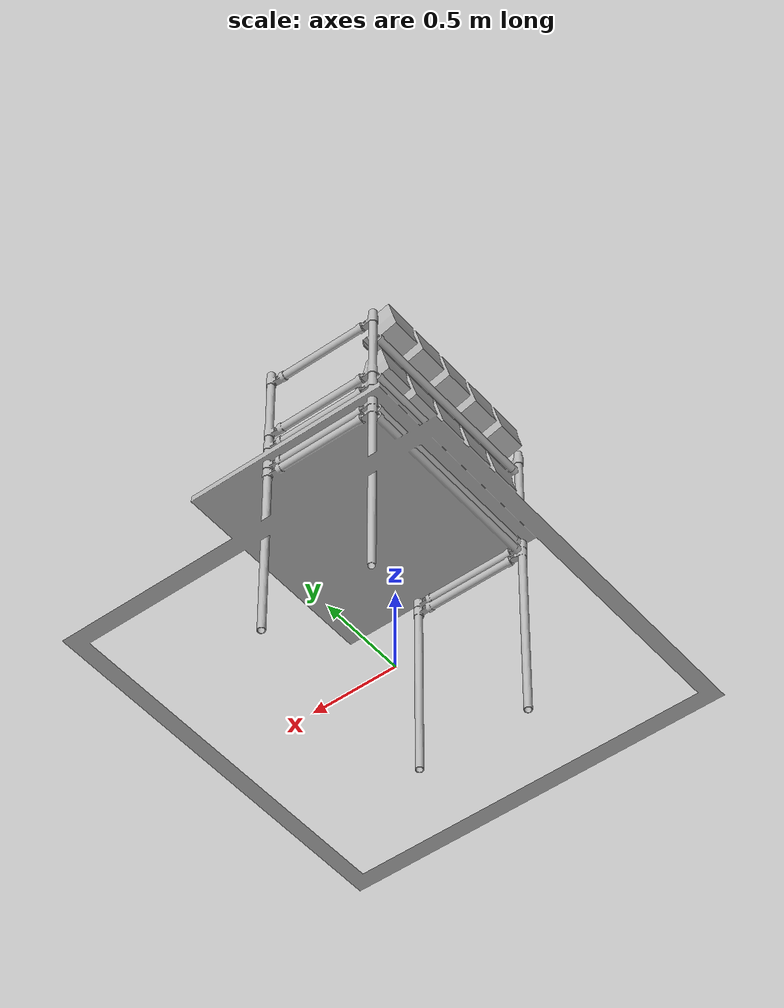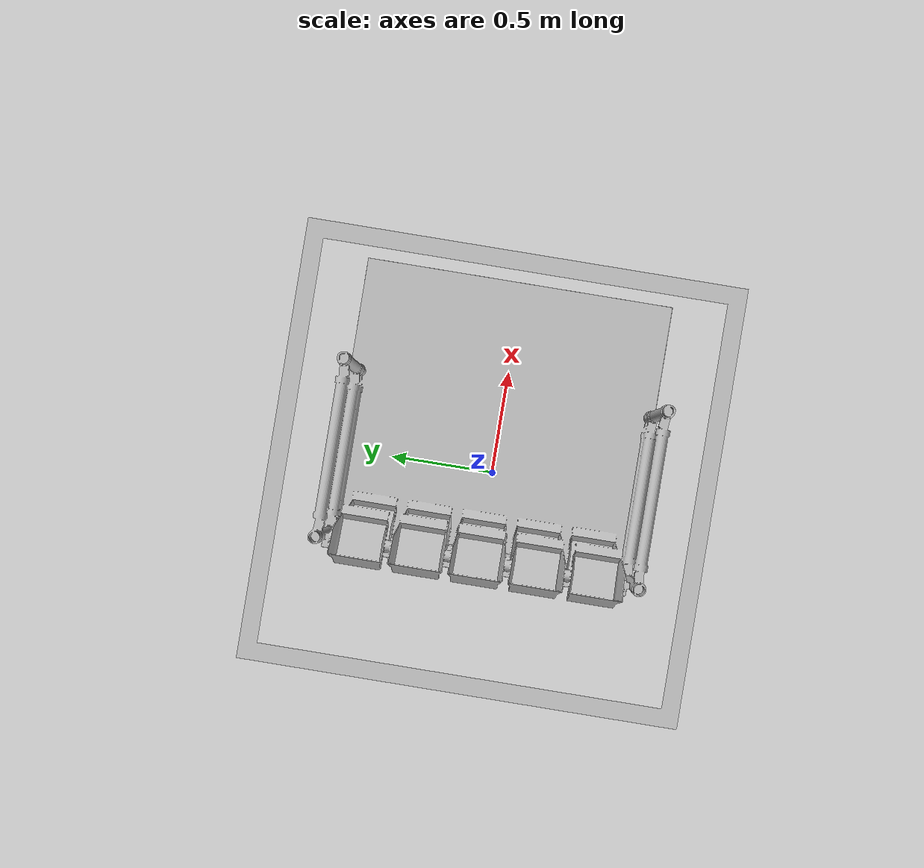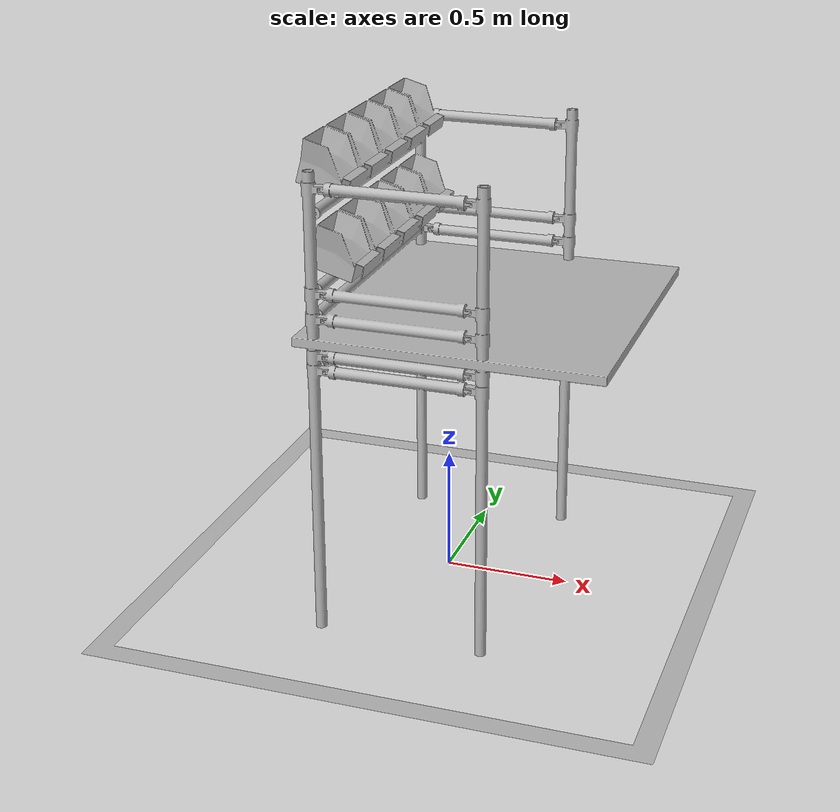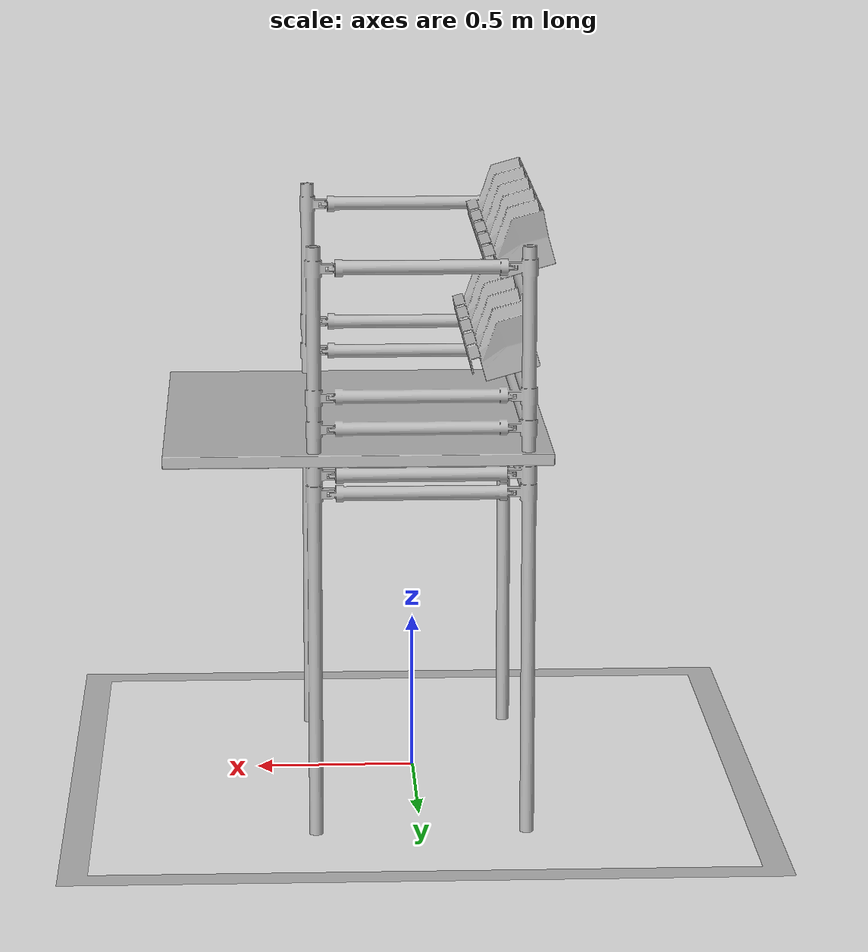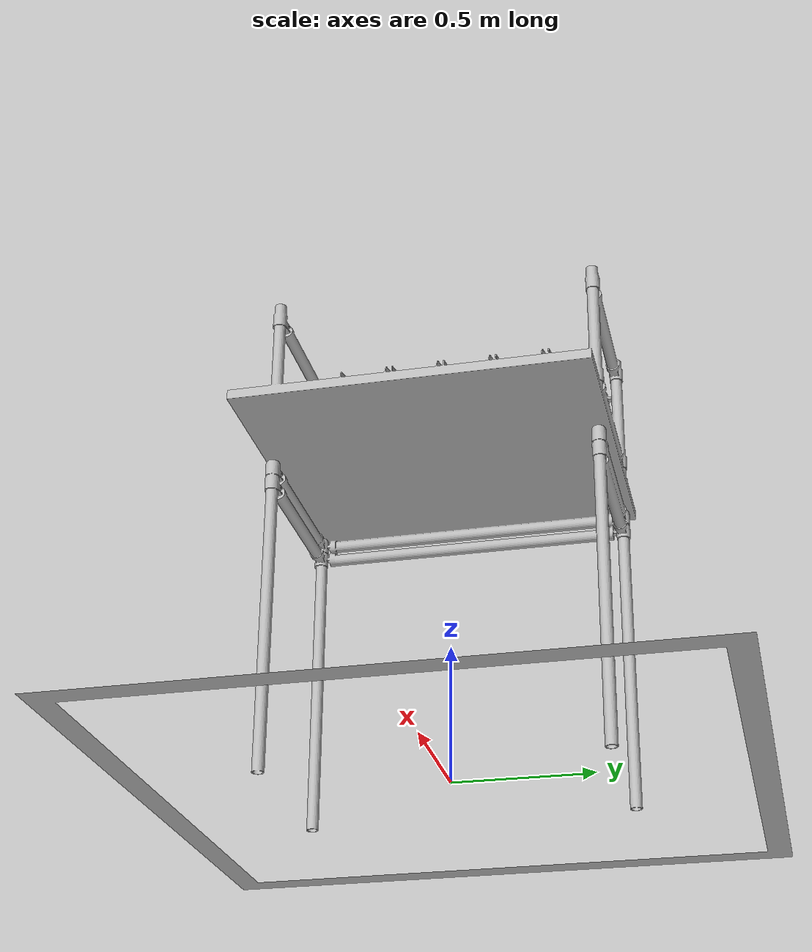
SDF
<?xml version="1.0" ?>
<sdf version="1.6">
  <model name="assembly_station">
    <static>false</static>
    <link name="link">
      <kinematic>1</kinematic>
      <inertial>
        <pose>0 0 0.15 0 0 0</pose>
        <mass>50.0</mass>
        <inertia>
          <ixx>4.525499333333333</ixx>
          <ixy>0</ixy>
          <ixz>0</ixz>
          <iyy>1.4504741933333334</iyy>
          <iyz>0</iyz>
          <izz>5.6426401933333326</izz>
        </inertia>
      </inertial>
      <collision name='collision'>
        <geometry>
           <mesh>
             <uri>model://assembly_station/meshes/assemblyStation.dae</uri>
             <scale>1.1 1.1 1.1 </scale>
           </mesh>
        </geometry>
        <surface>
          <contact>
            <ode>
              <max_vel>0.1</max_vel>
              <min_depth>0.001</min_depth>
            </ode>
          </contact>
        </surface>
      </collision>
      <visual name="visual">
         <geometry>
           <mesh>
             <uri>model://assembly_station/meshes/assemblyStation.dae</uri>
             <scale>1.1 1.1 1.1 </scale>
           </mesh>
         </geometry>
       </visual>
    </link>
  </model>
</sdf>
